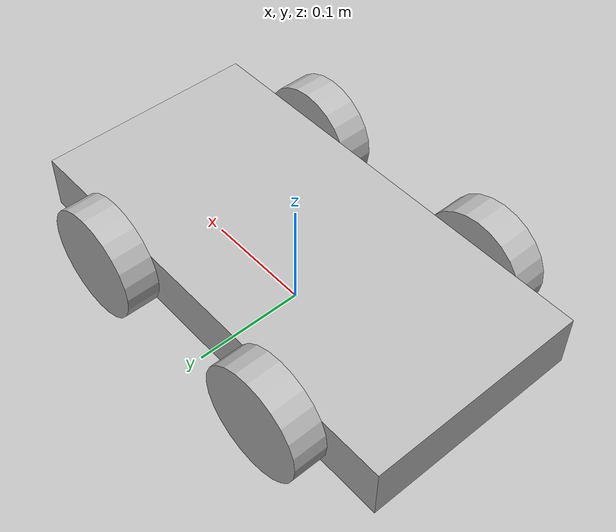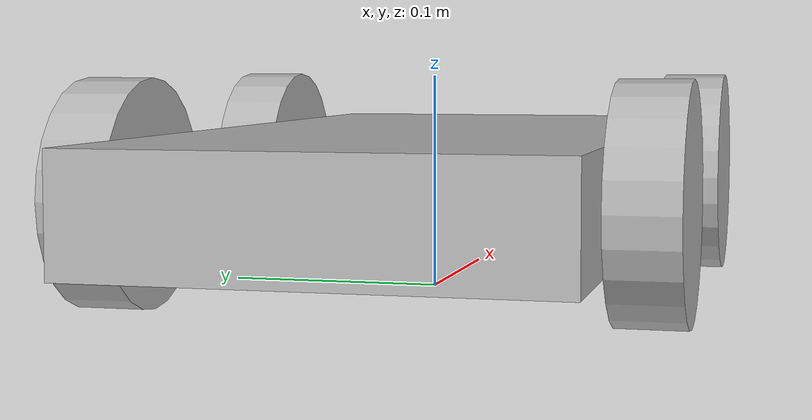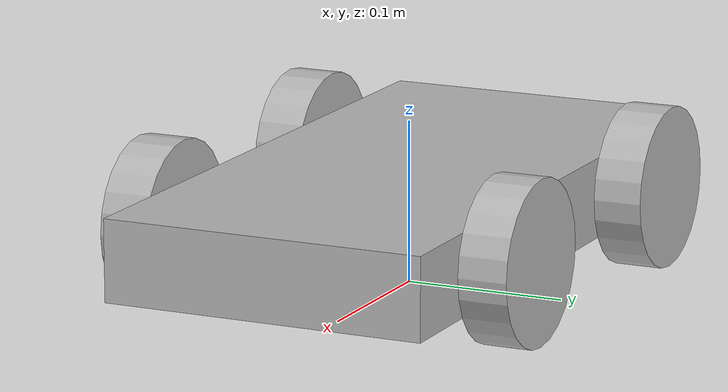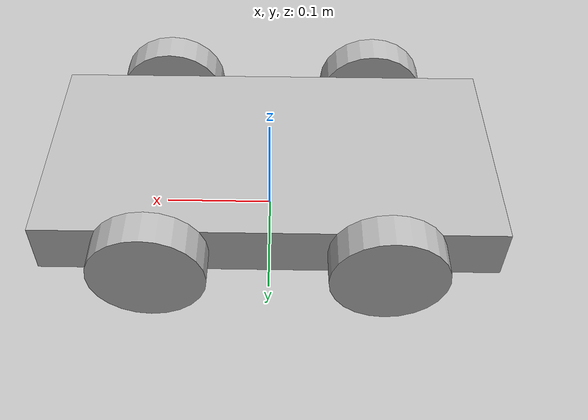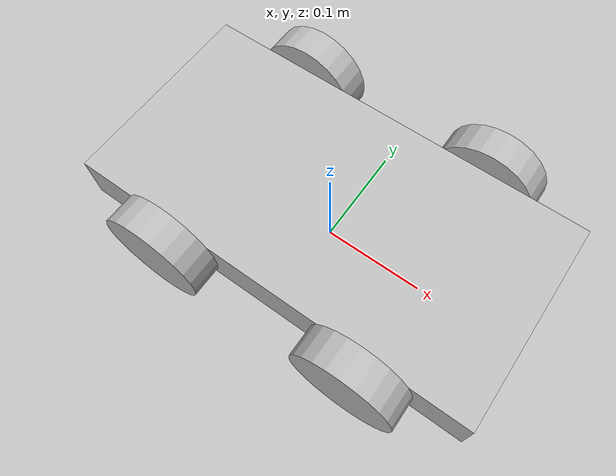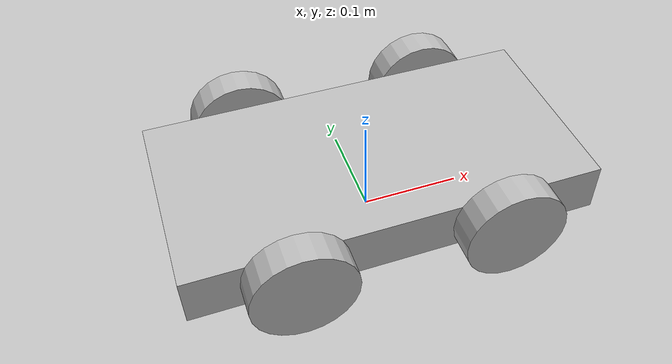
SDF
<?xml version="1.0"?>
  <sdf version="1.5">

    <model name="myartbot">
    <static>true</static>                                    <!--CHASSIS LINK-->
      <link name="chassis">
        <pose>0 0 0.05 0 0 0</pose>

        <collision name="collision">
          <geometry>
            <box>
              <size>0.4 0.2 0.05</size>
            </box>
          </geometry>
        </collision>

        <visual name="visual">
          <geometry>
            <box>
              <size>0.4 0.2 0.05</size>
            </box>
          </geometry>
        </visual>
      </link>

      <link name="wheelfl">                                  <!--FRONT LEFT WHEEL LINK-->
        <pose>0.1 0.115 0.05 0 1.5707 1.5707</pose>

        <collision name="collision">
          <geometry>
            <cylinder>
              <radius>0.05</radius>
              <length>0.03</length>
            </cylinder>
          </geometry>
        </collision>

        <visual name="visual">
          <geometry>
            <cylinder>
              <radius>0.05</radius>
              <length>0.03</length>
            </cylinder>
          </geometry>
        </visual>
      </link>

      <joint name="wheelfl_to_chassis" type="universal">
        <pose>0 0 0 0 0 0</pose>
        <child>wheelfl</child>
        <parent>chassis</parent>
        <axis>
          <xyz>0 1 0</xyz>
          <limit>
            <lower>-3.141592</lower>
            <upper>3.141592</upper>
          </limit>
        </axis>
        <axis2>
          <xyz>0 0 1</xyz>
          <limit>
            <lower>-0.523598</lower>
            <upper>0.523598</upper>
          </limit>
        </axis2>
      </joint>

      <link name="wheelfr">                                  <!--FRONT RIGHT WHEEL LINK-->
        <pose>0.1 -0.115 0.05 0 1.5707 1.5707</pose>

        <collision name="collision">
          <geometry>
            <cylinder>
              <radius>0.05</radius>
              <length>0.03</length>
            </cylinder>
          </geometry>
        </collision>

        <visual name="visual">
          <geometry>
            <cylinder>
              <radius>0.05</radius>
              <length>0.03</length>
            </cylinder>
          </geometry>
        </visual>
      </link>

      <joint name="wheelfr_to_chassis" type="universal">
        <pose>0 0 0 0 0 0</pose>
        <child>wheelfr</child>
        <parent>chassis</parent>
        <axis>
          <xyz>0 1 0</xyz>
          <limit>
            <lower>-3.141592</lower>
            <upper>3.141592</upper>
          </limit>
        </axis>
        <axis2>
          <xyz>0 0 1</xyz>
          <limit>
            <lower>-0.523598</lower>
            <upper>0.523598</upper>
          </limit>
        </axis2>
      </joint>

      <link name="wheelbl">                                  <!--BACK LEFT WHEEL LINK-->
        <pose>-0.1 0.115 0.05 0 1.5707 1.5707</pose>

        <collision name="collision">
          <geometry>
            <cylinder>
              <radius>0.05</radius>
              <length>0.03</length>
            </cylinder>
          </geometry>
        </collision>

        <visual name="visual">
          <geometry>
            <cylinder>
              <radius>0.05</radius>
              <length>0.03</length>
            </cylinder>
          </geometry>
        </visual>
      </link>

      <joint name="wheelbl_to_chassis" type="revolute">
        <pose>0 0 0 0 0 0</pose>
        <child>wheelbl</child>
        <parent>chassis</parent>
        <axis>
          <xyz>0 1 0</xyz>
        </axis>
      </joint>

      <link name="wheelbr">                                  <!--BACK RIGHT WHEEL LINK-->
        <pose>-0.1 -0.115 0.05 0 1.5707 1.5707</pose>

        <collision name="collision">
          <geometry>
            <cylinder>
              <radius>0.05</radius>
              <length>0.03</length>
            </cylinder>
          </geometry>
        </collision>

        <visual name="visual">
          <geometry>
            <cylinder>
              <radius>0.05</radius>
              <length>0.03</length>
            </cylinder>
          </geometry>
        </visual>
      </link>

      <joint name="wheelbr_to_chassis" type="revolute">
        <pose>0 0 0 0 0 0</pose>
        <child>wheelbr</child>
        <parent>chassis</parent>
        <axis>
          <xyz>0 1 0</xyz>
        </axis>
      </joint>

      <link name="link">

      <sensor type="camera" name="my_sensor">
        <pose>0.2 0 0.05 0 0 0</pose>
        <camera>
          <horizontal_fov>2.1679</horizontal_fov>
          <image>
            <width>320</width>
            <height>240</height>
          </image>
          <clip>
            <near>0.1</near>
            <far>100</far>
          </clip>
        </camera>
        <always_on>1</always_on>
        <update_rate>30</update_rate>
        <visualize>true</visualize>
        <plugin name="camera_controller" filename="libgazebo_ros_camera.so">
        </plugin>
      </sensor>

      </link>

      <joint name="camera_to_chassis" type="fixed">
        <parent>chassis</parent>
        <child>link</child>
        <pose>0 0 0 0 0 0</pose>
      </joint>

      <link name="laser">
        <sensor type="ray" name="head_hokuyo_sensor">
          <pose>0.2 0 0.025 0 0 0</pose>
          <visualize>true</visualize>
          <update_rate>40</update_rate>
          <ray>
            <scan>
              <horizontal>
                <samples>640</samples>
                <resolution>1</resolution>
                <min_angle>-1.570796</min_angle>
                <max_angle>1.570796</max_angle>
              </horizontal>
            </scan>
            <range>
              <min>0.1</min>
              <max>7</max>
              <resolution>0.01</resolution>
            </range>
          </ray>
          <plugin name="gazebo_ros_head_hokuyo_controller" filename="libgazebo_ros_laser.so">
            <topicName>/scan</topicName>
        </plugin>
        </sensor>
      </link>

    </model>
  </sdf>
